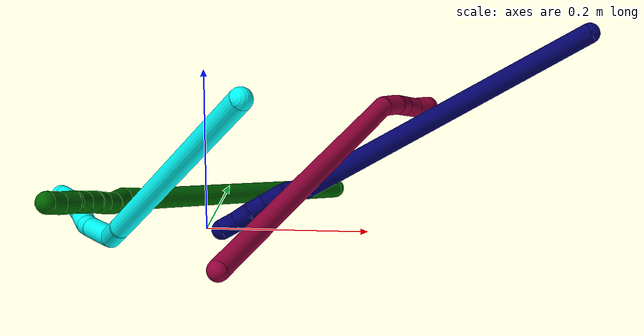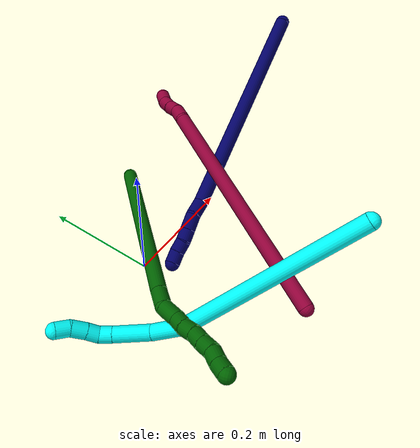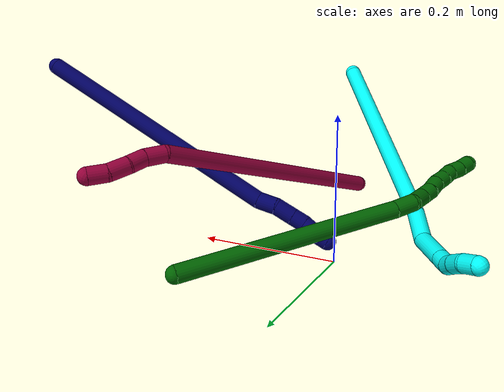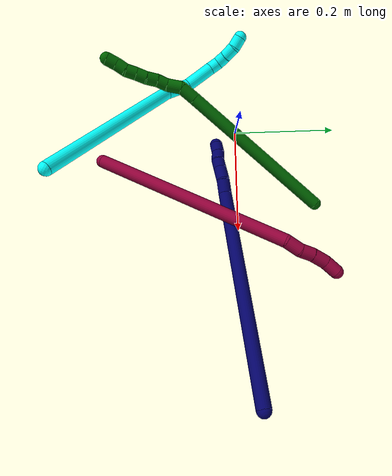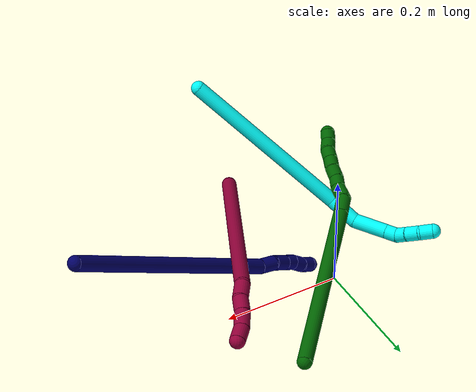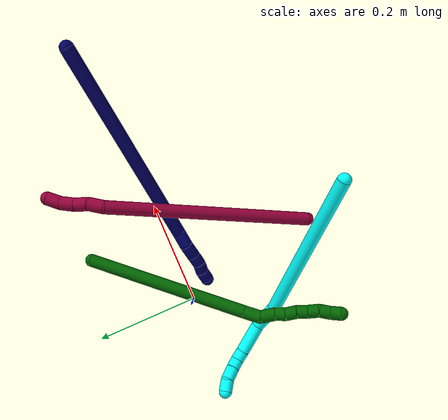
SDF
<sdf version="1.7">
 <world name="default">
  <model name="3">
   <static>0</static>
   <link name="3">
    <collision name="collision-cylinder-e_1_1_4">
     <pose>-0.101077 0.094015 -0.061134 -2.14735 -0.733545 1.23219</pose>
     <geometry><cylinder><radius>0.0125</radius><length>0.301945</length></cylinder></geometry>
     <surface>
      <friction><ode><mu>1.16</mu><mu2>1.16</mu2><slip1>0</slip1><slip2>0</slip2></ode></friction>
      <contact><ode><kp>1e+06</kp><kd>1</kd><max_vel>0</max_vel><min_depth>0.001</min_depth></ode></contact>
     </surface>
    </collision>
    <visual name="visual-cylinder-e_1_1_4">
     <pose>-0.101077 0.094015 -0.061134 -2.14735 -0.733545 1.23219</pose>
     <geometry><cylinder><radius>0.0125</radius><length>0.301945</length></cylinder></geometry>
     <material><ambient>0.003922 1 0.996078 1</ambient></material>
    </visual>
    <collision name="collision-cylinder-e_2_4_5">
     <pose>-0.214316 0.205091 -0.13794 -2.31381 -0.483421 1.02285</pose>
     <geometry><cylinder><radius>0.0125</radius><length>0.052331</length></cylinder></geometry>
     <surface>
      <friction><ode><mu>1.16</mu><mu2>1.16</mu2><slip1>0</slip1><slip2>0</slip2></ode></friction>
      <contact><ode><kp>1e+06</kp><kd>1</kd><max_vel>0</max_vel><min_depth>0.001</min_depth></ode></contact>
     </surface>
    </collision>
    <visual name="visual-cylinder-e_2_4_5">
     <pose>-0.214316 0.205091 -0.13794 -2.31381 -0.483421 1.02285</pose>
     <geometry><cylinder><radius>0.0125</radius><length>0.052331</length></cylinder></geometry>
     <material><ambient>0.003922 1 0.996078 1</ambient></material>
    </visual>
    <collision name="collision-cylinder-e_3_5_6">
     <pose>-0.230747 0.248249 -0.16565 -2.00297 -0.147452 0.229796</pose>
     <geometry><cylinder><radius>0.0125</radius><length>0.05811</length></cylinder></geometry>
     <surface>
      <friction><ode><mu>1.16</mu><mu2>1.16</mu2><slip1>0</slip1><slip2>0</slip2></ode></friction>
      <contact><ode><kp>1e+06</kp><kd>1</kd><max_vel>0</max_vel><min_depth>0.001</min_depth></ode></contact>
     </surface>
    </collision>
    <visual name="visual-cylinder-e_3_5_6">
     <pose>-0.230747 0.248249 -0.16565 -2.00297 -0.147452 0.229796</pose>
     <geometry><cylinder><radius>0.0125</radius><length>0.05811</length></cylinder></geometry>
     <material><ambient>0.003922 1 0.996078 1</ambient></material>
    </visual>
    <collision name="collision-cylinder-e_4_6_7">
     <pose>-0.236142 0.283549 -0.182163 -2.0234 -0.109635 0.174951</pose>
     <geometry><cylinder><radius>0.0125</radius><length>0.020591</length></cylinder></geometry>
     <surface>
      <friction><ode><mu>1.16</mu><mu2>1.16</mu2><slip1>0</slip1><slip2>0</slip2></ode></friction>
      <contact><ode><kp>1e+06</kp><kd>1</kd><max_vel>0</max_vel><min_depth>0.001</min_depth></ode></contact>
     </surface>
    </collision>
    <visual name="visual-cylinder-e_4_6_7">
     <pose>-0.236142 0.283549 -0.182163 -2.0234 -0.109635 0.174951</pose>
     <geometry><cylinder><radius>0.0125</radius><length>0.020591</length></cylinder></geometry>
     <material><ambient>0.003922 1 0.996078 1</ambient></material>
    </visual>
    <collision name="collision-cylinder-e_5_7_8">
     <pose>-0.233642 0.301791 -0.18913 -1.83979 0.369091 -0.48071</pose>
     <geometry><cylinder><radius>0.0125</radius><length>0.020106</length></cylinder></geometry>
     <surface>
      <friction><ode><mu>1.16</mu><mu2>1.16</mu2><slip1>0</slip1><slip2>0</slip2></ode></friction>
      <contact><ode><kp>1e+06</kp><kd>1</kd><max_vel>0</max_vel><min_depth>0.001</min_depth></ode></contact>
     </surface>
    </collision>
    <visual name="visual-cylinder-e_5_7_8">
     <pose>-0.233642 0.301791 -0.18913 -1.83979 0.369091 -0.48071</pose>
     <geometry><cylinder><radius>0.0125</radius><length>0.020106</length></cylinder></geometry>
     <material><ambient>0.003922 1 0.996078 1</ambient></material>
    </visual>
    <collision name="collision-cylinder-e_6_8_9">
     <pose>-0.226397 0.322197 -0.194106 -1.78595 0.301431 -0.372898</pose>
     <geometry><cylinder><radius>0.0125</radius><length>0.024369</length></cylinder></geometry>
     <surface>
      <friction><ode><mu>1.16</mu><mu2>1.16</mu2><slip1>0</slip1><slip2>0</slip2></ode></friction>
      <contact><ode><kp>1e+06</kp><kd>1</kd><max_vel>0</max_vel><min_depth>0.001</min_depth></ode></contact>
     </surface>
    </collision>
    <visual name="visual-cylinder-e_6_8_9">
     <pose>-0.226397 0.322197 -0.194106 -1.78595 0.301431 -0.372898</pose>
     <geometry><cylinder><radius>0.0125</radius><length>0.024369</length></cylinder></geometry>
     <material><ambient>0.003922 1 0.996078 1</ambient></material>
    </visual>
    <collision name="collision-cylinder-e_7_9_2">
     <pose>-0.222437 0.344832 -0.196719 -1.58229 0.030392 -0.030743</pose>
     <geometry><cylinder><radius>0.0125</radius><length>0.022548</length></cylinder></geometry>
     <surface>
      <friction><ode><mu>1.16</mu><mu2>1.16</mu2><slip1>0</slip1><slip2>0</slip2></ode></friction>
      <contact><ode><kp>1e+06</kp><kd>1</kd><max_vel>0</max_vel><min_depth>0.001</min_depth></ode></contact>
     </surface>
    </collision>
    <visual name="visual-cylinder-e_7_9_2">
     <pose>-0.222437 0.344832 -0.196719 -1.58229 0.030392 -0.030743</pose>
     <geometry><cylinder><radius>0.0125</radius><length>0.022548</length></cylinder></geometry>
     <material><ambient>0.003922 1 0.996078 1</ambient></material>
    </visual>
    <collision name="collision-sphere-2">
     <pose>-0.222095 0.356101 -0.196849 0 -0 0</pose>
     <geometry><sphere><radius>0.0125</radius></sphere></geometry>
     <surface>
      <friction><ode><mu>1.16</mu><mu2>1.16</mu2><slip1>0</slip1><slip2>0</slip2></ode></friction>
      <contact><ode><kp>1e+06</kp><kd>1</kd><max_vel>0</max_vel><min_depth>0.001</min_depth></ode></contact>
     </surface>
    </collision>
    <visual name="visual-sphere-2">
     <pose>-0.222095 0.356101 -0.196849 0 -0 0</pose>
     <geometry><sphere><radius>0.0125</radius></sphere></geometry>
     <material><ambient>0.003922 1 0.996078 1</ambient></material>
    </visual>
    <collision name="collision-sphere-9">
     <pose>-0.22278 0.333564 -0.19659 0 -0 0</pose>
     <geometry><sphere><radius>0.0125</radius></sphere></geometry>
     <surface>
      <friction><ode><mu>1.16</mu><mu2>1.16</mu2><slip1>0</slip1><slip2>0</slip2></ode></friction>
      <contact><ode><kp>1e+06</kp><kd>1</kd><max_vel>0</max_vel><min_depth>0.001</min_depth></ode></contact>
     </surface>
    </collision>
    <visual name="visual-sphere-9">
     <pose>-0.22278 0.333564 -0.19659 0 -0 0</pose>
     <geometry><sphere><radius>0.0125</radius></sphere></geometry>
     <material><ambient>0.003922 1 0.996078 1</ambient></material>
    </visual>
    <collision name="collision-sphere-4">
     <pose>-0.202154 0.18803 -0.122267 0 -0 0</pose>
     <geometry><sphere><radius>0.0125</radius></sphere></geometry>
     <surface>
      <friction><ode><mu>1.16</mu><mu2>1.16</mu2><slip1>0</slip1><slip2>0</slip2></ode></friction>
      <contact><ode><kp>1e+06</kp><kd>1</kd><max_vel>0</max_vel><min_depth>0.001</min_depth></ode></contact>
     </surface>
    </collision>
    <visual name="visual-sphere-4">
     <pose>-0.202154 0.18803 -0.122267 0 -0 0</pose>
     <geometry><sphere><radius>0.0125</radius></sphere></geometry>
     <material><ambient>0.003922 1 0.996078 1</ambient></material>
    </visual>
    <collision name="collision-sphere-1">
     <geometry><sphere><radius>0.0125</radius></sphere></geometry>
     <surface>
      <friction><ode><mu>1.16</mu><mu2>1.16</mu2><slip1>0</slip1><slip2>0</slip2></ode></friction>
      <contact><ode><kp>1e+06</kp><kd>1</kd><max_vel>0</max_vel><min_depth>0.001</min_depth></ode></contact>
     </surface>
    </collision>
    <visual name="visual-sphere-1">
     <geometry><sphere><radius>0.0125</radius></sphere></geometry>
     <material><ambient>0.003922 1 0.996078 1</ambient></material>
    </visual>
    <collision name="collision-sphere-8">
     <pose>-0.230015 0.31083 -0.191622 0 -0 0</pose>
     <geometry><sphere><radius>0.0125</radius></sphere></geometry>
     <surface>
      <friction><ode><mu>1.16</mu><mu2>1.16</mu2><slip1>0</slip1><slip2>0</slip2></ode></friction>
      <contact><ode><kp>1e+06</kp><kd>1</kd><max_vel>0</max_vel><min_depth>0.001</min_depth></ode></contact>
     </surface>
    </collision>
    <visual name="visual-sphere-8">
     <pose>-0.230015 0.31083 -0.191622 0 -0 0</pose>
     <geometry><sphere><radius>0.0125</radius></sphere></geometry>
     <material><ambient>0.003922 1 0.996078 1</ambient></material>
    </visual>
    <collision name="collision-sphere-5">
     <pose>-0.226478 0.222152 -0.153613 0 -0 0</pose>
     <geometry><sphere><radius>0.0125</radius></sphere></geometry>
     <surface>
      <friction><ode><mu>1.16</mu><mu2>1.16</mu2><slip1>0</slip1><slip2>0</slip2></ode></friction>
      <contact><ode><kp>1e+06</kp><kd>1</kd><max_vel>0</max_vel><min_depth>0.001</min_depth></ode></contact>
     </surface>
    </collision>
    <visual name="visual-sphere-5">
     <pose>-0.226478 0.222152 -0.153613 0 -0 0</pose>
     <geometry><sphere><radius>0.0125</radius></sphere></geometry>
     <material><ambient>0.003922 1 0.996078 1</ambient></material>
    </visual>
    <collision name="collision-sphere-6">
     <pose>-0.235016 0.274346 -0.177687 0 -0 0</pose>
     <geometry><sphere><radius>0.0125</radius></sphere></geometry>
     <surface>
      <friction><ode><mu>1.16</mu><mu2>1.16</mu2><slip1>0</slip1><slip2>0</slip2></ode></friction>
      <contact><ode><kp>1e+06</kp><kd>1</kd><max_vel>0</max_vel><min_depth>0.001</min_depth></ode></contact>
     </surface>
    </collision>
    <visual name="visual-sphere-6">
     <pose>-0.235016 0.274346 -0.177687 0 -0 0</pose>
     <geometry><sphere><radius>0.0125</radius></sphere></geometry>
     <material><ambient>0.003922 1 0.996078 1</ambient></material>
    </visual>
    <collision name="collision-sphere-7">
     <pose>-0.237269 0.292753 -0.186638 0 -0 0</pose>
     <geometry><sphere><radius>0.0125</radius></sphere></geometry>
     <surface>
      <friction><ode><mu>1.16</mu><mu2>1.16</mu2><slip1>0</slip1><slip2>0</slip2></ode></friction>
      <contact><ode><kp>1e+06</kp><kd>1</kd><max_vel>0</max_vel><min_depth>0.001</min_depth></ode></contact>
     </surface>
    </collision>
    <visual name="visual-sphere-7">
     <pose>-0.237269 0.292753 -0.186638 0 -0 0</pose>
     <geometry><sphere><radius>0.0125</radius></sphere></geometry>
     <material><ambient>0.003922 1 0.996078 1</ambient></material>
    </visual>
    <inertial>
     <pose>-0.150473 0.162158 -0.104046 0 -0 0</pose>
     <mass>0.5</mass>
     <inertia>
      <ixx>0.002212</ixx>
      <ixy>0</ixy>
      <ixz>0</ixz>
      <iyy>0.002451</iyy>
      <iyz>0</iyz>
      <izz>6.8e-05</izz>
     </inertia>
    </inertial>
   </link>
   <pose>0.086142 -0.309185 0.226495 0.620953 -1.20568 0.402928</pose>
  </model>
  <model name="6">
   <static>0</static>
   <link name="6">
    <collision name="collision-cylinder-e_1_1_4">
     <pose>-0.125184 -0.044501 -0.086803 2.66786 -0.908861 -2.22372</pose>
     <geometry><cylinder><radius>0.0125</radius><length>0.317403</length></cylinder></geometry>
     <surface>
      <friction><ode><mu>1.16</mu><mu2>1.16</mu2><slip1>0</slip1><slip2>0</slip2></ode></friction>
      <contact><ode><kp>1e+06</kp><kd>1</kd><max_vel>0</max_vel><min_depth>0.001</min_depth></ode></contact>
     </surface>
    </collision>
    <visual name="visual-cylinder-e_1_1_4">
     <pose>-0.125184 -0.044501 -0.086803 2.66786 -0.908861 -2.22372</pose>
     <geometry><cylinder><radius>0.0125</radius><length>0.317403</length></cylinder></geometry>
     <material><ambient>0 0.392157 0.003922 1</ambient></material>
    </visual>
    <collision name="collision-cylinder-e_2_4_5">
     <pose>-0.262596 -0.094484 -0.182718 2.59997 -0.854918 -2.04692</pose>
     <geometry><cylinder><radius>0.0125</radius><length>0.03241</length></cylinder></geometry>
     <surface>
      <friction><ode><mu>1.16</mu><mu2>1.16</mu2><slip1>0</slip1><slip2>0</slip2></ode></friction>
      <contact><ode><kp>1e+06</kp><kd>1</kd><max_vel>0</max_vel><min_depth>0.001</min_depth></ode></contact>
     </surface>
    </collision>
    <visual name="visual-cylinder-e_2_4_5">
     <pose>-0.262596 -0.094484 -0.182718 2.59997 -0.854918 -2.04692</pose>
     <geometry><cylinder><radius>0.0125</radius><length>0.03241</length></cylinder></geometry>
     <material><ambient>0 0.392157 0.003922 1</ambient></material>
    </visual>
    <collision name="collision-cylinder-e_3_5_6">
     <pose>-0.280973 -0.10164 -0.20456 3.0109 -0.446742 -2.58062</pose>
     <geometry><cylinder><radius>0.0125</radius><length>0.028471</length></cylinder></geometry>
     <surface>
      <friction><ode><mu>1.16</mu><mu2>1.16</mu2><slip1>0</slip1><slip2>0</slip2></ode></friction>
      <contact><ode><kp>1e+06</kp><kd>1</kd><max_vel>0</max_vel><min_depth>0.001</min_depth></ode></contact>
     </surface>
    </collision>
    <visual name="visual-cylinder-e_3_5_6">
     <pose>-0.280973 -0.10164 -0.20456 3.0109 -0.446742 -2.58062</pose>
     <geometry><cylinder><radius>0.0125</radius><length>0.028471</length></cylinder></geometry>
     <material><ambient>0 0.392157 0.003922 1</ambient></material>
    </visual>
    <collision name="collision-cylinder-e_4_6_7">
     <pose>-0.292626 -0.106839 -0.225032 2.71434 -0.574122 -1.87413</pose>
     <geometry><cylinder><radius>0.0125</radius><length>0.020267</length></cylinder></geometry>
     <surface>
      <friction><ode><mu>1.16</mu><mu2>1.16</mu2><slip1>0</slip1><slip2>0</slip2></ode></friction>
      <contact><ode><kp>1e+06</kp><kd>1</kd><max_vel>0</max_vel><min_depth>0.001</min_depth></ode></contact>
     </surface>
    </collision>
    <visual name="visual-cylinder-e_4_6_7">
     <pose>-0.292626 -0.106839 -0.225032 2.71434 -0.574122 -1.87413</pose>
     <geometry><cylinder><radius>0.0125</radius><length>0.020267</length></cylinder></geometry>
     <material><ambient>0 0.392157 0.003922 1</ambient></material>
    </visual>
    <collision name="collision-cylinder-e_5_7_8">
     <pose>-0.301789 -0.114128 -0.242064 2.75656 -0.350086 -1.47362</pose>
     <geometry><cylinder><radius>0.0125</radius><length>0.021337</length></cylinder></geometry>
     <surface>
      <friction><ode><mu>1.16</mu><mu2>1.16</mu2><slip1>0</slip1><slip2>0</slip2></ode></friction>
      <contact><ode><kp>1e+06</kp><kd>1</kd><max_vel>0</max_vel><min_depth>0.001</min_depth></ode></contact>
     </surface>
    </collision>
    <visual name="visual-cylinder-e_5_7_8">
     <pose>-0.301789 -0.114128 -0.242064 2.75656 -0.350086 -1.47362</pose>
     <geometry><cylinder><radius>0.0125</radius><length>0.021337</length></cylinder></geometry>
     <material><ambient>0 0.392157 0.003922 1</ambient></material>
    </visual>
    <collision name="collision-cylinder-e_6_8_9">
     <pose>-0.310811 -0.120874 -0.259259 2.78099 -0.56554 -2.02101</pose>
     <geometry><cylinder><radius>0.0125</radius><length>0.020018</length></cylinder></geometry>
     <surface>
      <friction><ode><mu>1.16</mu><mu2>1.16</mu2><slip1>0</slip1><slip2>0</slip2></ode></friction>
      <contact><ode><kp>1e+06</kp><kd>1</kd><max_vel>0</max_vel><min_depth>0.001</min_depth></ode></contact>
     </surface>
    </collision>
    <visual name="visual-cylinder-e_6_8_9">
     <pose>-0.310811 -0.120874 -0.259259 2.78099 -0.56554 -2.02101</pose>
     <geometry><cylinder><radius>0.0125</radius><length>0.020018</length></cylinder></geometry>
     <material><ambient>0 0.392157 0.003922 1</ambient></material>
    </visual>
    <collision name="collision-cylinder-e_7_9_10">
     <pose>-0.320709 -0.127174 -0.275444 2.76032 -0.470371 -1.7856</pose>
     <geometry><cylinder><radius>0.0125</radius><length>0.02001</length></cylinder></geometry>
     <surface>
      <friction><ode><mu>1.16</mu><mu2>1.16</mu2><slip1>0</slip1><slip2>0</slip2></ode></friction>
      <contact><ode><kp>1e+06</kp><kd>1</kd><max_vel>0</max_vel><min_depth>0.001</min_depth></ode></contact>
     </surface>
    </collision>
    <visual name="visual-cylinder-e_7_9_10">
     <pose>-0.320709 -0.127174 -0.275444 2.76032 -0.470371 -1.7856</pose>
     <geometry><cylinder><radius>0.0125</radius><length>0.02001</length></cylinder></geometry>
     <material><ambient>0 0.392157 0.003922 1</ambient></material>
    </visual>
    <collision name="collision-cylinder-e_8_10_11">
     <pose>-0.332345 -0.13326 -0.290254 2.74091 -0.785933 -2.23057</pose>
     <geometry><cylinder><radius>0.0125</radius><length>0.020074</length></cylinder></geometry>
     <surface>
      <friction><ode><mu>1.16</mu><mu2>1.16</mu2><slip1>0</slip1><slip2>0</slip2></ode></friction>
      <contact><ode><kp>1e+06</kp><kd>1</kd><max_vel>0</max_vel><min_depth>0.001</min_depth></ode></contact>
     </surface>
    </collision>
    <visual name="visual-cylinder-e_8_10_11">
     <pose>-0.332345 -0.13326 -0.290254 2.74091 -0.785933 -2.23057</pose>
     <geometry><cylinder><radius>0.0125</radius><length>0.020074</length></cylinder></geometry>
     <material><ambient>0 0.392157 0.003922 1</ambient></material>
    </visual>
    <collision name="collision-cylinder-e_9_11_2">
     <pose>-0.345426 -0.139554 -0.303989 2.68618 -0.640672 -1.92221</pose>
     <geometry><cylinder><radius>0.0125</radius><length>0.020011</length></cylinder></geometry>
     <surface>
      <friction><ode><mu>1.16</mu><mu2>1.16</mu2><slip1>0</slip1><slip2>0</slip2></ode></friction>
      <contact><ode><kp>1e+06</kp><kd>1</kd><max_vel>0</max_vel><min_depth>0.001</min_depth></ode></contact>
     </surface>
    </collision>
    <visual name="visual-cylinder-e_9_11_2">
     <pose>-0.345426 -0.139554 -0.303989 2.68618 -0.640672 -1.92221</pose>
     <geometry><cylinder><radius>0.0125</radius><length>0.020011</length></cylinder></geometry>
     <material><ambient>0 0.392157 0.003922 1</ambient></material>
    </visual>
    <collision name="collision-sphere-2">
     <pose>-0.351407 -0.143082 -0.311193 0 -0 0</pose>
     <geometry><sphere><radius>0.0125</radius></sphere></geometry>
     <surface>
      <friction><ode><mu>1.16</mu><mu2>1.16</mu2><slip1>0</slip1><slip2>0</slip2></ode></friction>
      <contact><ode><kp>1e+06</kp><kd>1</kd><max_vel>0</max_vel><min_depth>0.001</min_depth></ode></contact>
     </surface>
    </collision>
    <visual name="visual-sphere-2">
     <pose>-0.351407 -0.143082 -0.311193 0 -0 0</pose>
     <geometry><sphere><radius>0.0125</radius></sphere></geometry>
     <material><ambient>0 0.392157 0.003922 1</ambient></material>
    </visual>
    <collision name="collision-sphere-11">
     <pose>-0.339446 -0.136026 -0.296785 0 -0 0</pose>
     <geometry><sphere><radius>0.0125</radius></sphere></geometry>
     <surface>
      <friction><ode><mu>1.16</mu><mu2>1.16</mu2><slip1>0</slip1><slip2>0</slip2></ode></friction>
      <contact><ode><kp>1e+06</kp><kd>1</kd><max_vel>0</max_vel><min_depth>0.001</min_depth></ode></contact>
     </surface>
    </collision>
    <visual name="visual-sphere-11">
     <pose>-0.339446 -0.136026 -0.296785 0 -0 0</pose>
     <geometry><sphere><radius>0.0125</radius></sphere></geometry>
     <material><ambient>0 0.392157 0.003922 1</ambient></material>
    </visual>
    <collision name="collision-sphere-10">
     <pose>-0.325244 -0.130493 -0.283722 0 -0 0</pose>
     <geometry><sphere><radius>0.0125</radius></sphere></geometry>
     <surface>
      <friction><ode><mu>1.16</mu><mu2>1.16</mu2><slip1>0</slip1><slip2>0</slip2></ode></friction>
      <contact><ode><kp>1e+06</kp><kd>1</kd><max_vel>0</max_vel><min_depth>0.001</min_depth></ode></contact>
     </surface>
    </collision>
    <visual name="visual-sphere-10">
     <pose>-0.325244 -0.130493 -0.283722 0 -0 0</pose>
     <geometry><sphere><radius>0.0125</radius></sphere></geometry>
     <material><ambient>0 0.392157 0.003922 1</ambient></material>
    </visual>
    <collision name="collision-sphere-9">
     <pose>-0.316175 -0.123856 -0.267166 0 -0 0</pose>
     <geometry><sphere><radius>0.0125</radius></sphere></geometry>
     <surface>
      <friction><ode><mu>1.16</mu><mu2>1.16</mu2><slip1>0</slip1><slip2>0</slip2></ode></friction>
      <contact><ode><kp>1e+06</kp><kd>1</kd><max_vel>0</max_vel><min_depth>0.001</min_depth></ode></contact>
     </surface>
    </collision>
    <visual name="visual-sphere-9">
     <pose>-0.316175 -0.123856 -0.267166 0 -0 0</pose>
     <geometry><sphere><radius>0.0125</radius></sphere></geometry>
     <material><ambient>0 0.392157 0.003922 1</ambient></material>
    </visual>
    <collision name="collision-sphere-4">
     <pose>-0.250369 -0.089001 -0.173605 0 -0 0</pose>
     <geometry><sphere><radius>0.0125</radius></sphere></geometry>
     <surface>
      <friction><ode><mu>1.16</mu><mu2>1.16</mu2><slip1>0</slip1><slip2>0</slip2></ode></friction>
      <contact><ode><kp>1e+06</kp><kd>1</kd><max_vel>0</max_vel><min_depth>0.001</min_depth></ode></contact>
     </surface>
    </collision>
    <visual name="visual-sphere-4">
     <pose>-0.250369 -0.089001 -0.173605 0 -0 0</pose>
     <geometry><sphere><radius>0.0125</radius></sphere></geometry>
     <material><ambient>0 0.392157 0.003922 1</ambient></material>
    </visual>
    <collision name="collision-sphere-1">
     <geometry><sphere><radius>0.0125</radius></sphere></geometry>
     <surface>
      <friction><ode><mu>1.16</mu><mu2>1.16</mu2><slip1>0</slip1><slip2>0</slip2></ode></friction>
      <contact><ode><kp>1e+06</kp><kd>1</kd><max_vel>0</max_vel><min_depth>0.001</min_depth></ode></contact>
     </surface>
    </collision>
    <visual name="visual-sphere-1">
     <geometry><sphere><radius>0.0125</radius></sphere></geometry>
     <material><ambient>0 0.392157 0.003922 1</ambient></material>
    </visual>
    <collision name="collision-sphere-8">
     <pose>-0.305448 -0.117892 -0.251352 0 -0 0</pose>
     <geometry><sphere><radius>0.0125</radius></sphere></geometry>
     <surface>
      <friction><ode><mu>1.16</mu><mu2>1.16</mu2><slip1>0</slip1><slip2>0</slip2></ode></friction>
      <contact><ode><kp>1e+06</kp><kd>1</kd><max_vel>0</max_vel><min_depth>0.001</min_depth></ode></contact>
     </surface>
    </collision>
    <visual name="visual-sphere-8">
     <pose>-0.305448 -0.117892 -0.251352 0 -0 0</pose>
     <geometry><sphere><radius>0.0125</radius></sphere></geometry>
     <material><ambient>0 0.392157 0.003922 1</ambient></material>
    </visual>
    <collision name="collision-sphere-5">
     <pose>-0.274823 -0.099967 -0.191831 0 -0 0</pose>
     <geometry><sphere><radius>0.0125</radius></sphere></geometry>
     <surface>
      <friction><ode><mu>1.16</mu><mu2>1.16</mu2><slip1>0</slip1><slip2>0</slip2></ode></friction>
      <contact><ode><kp>1e+06</kp><kd>1</kd><max_vel>0</max_vel><min_depth>0.001</min_depth></ode></contact>
     </surface>
    </collision>
    <visual name="visual-sphere-5">
     <pose>-0.274823 -0.099967 -0.191831 0 -0 0</pose>
     <geometry><sphere><radius>0.0125</radius></sphere></geometry>
     <material><ambient>0 0.392157 0.003922 1</ambient></material>
    </visual>
    <collision name="collision-sphere-6">
     <pose>-0.287123 -0.103313 -0.217289 0 -0 0</pose>
     <geometry><sphere><radius>0.0125</radius></sphere></geometry>
     <surface>
      <friction><ode><mu>1.16</mu><mu2>1.16</mu2><slip1>0</slip1><slip2>0</slip2></ode></friction>
      <contact><ode><kp>1e+06</kp><kd>1</kd><max_vel>0</max_vel><min_depth>0.001</min_depth></ode></contact>
     </surface>
    </collision>
    <visual name="visual-sphere-6">
     <pose>-0.287123 -0.103313 -0.217289 0 -0 0</pose>
     <geometry><sphere><radius>0.0125</radius></sphere></geometry>
     <material><ambient>0 0.392157 0.003922 1</ambient></material>
    </visual>
    <collision name="collision-sphere-7">
     <pose>-0.29813 -0.110364 -0.232776 0 -0 0</pose>
     <geometry><sphere><radius>0.0125</radius></sphere></geometry>
     <surface>
      <friction><ode><mu>1.16</mu><mu2>1.16</mu2><slip1>0</slip1><slip2>0</slip2></ode></friction>
      <contact><ode><kp>1e+06</kp><kd>1</kd><max_vel>0</max_vel><min_depth>0.001</min_depth></ode></contact>
     </surface>
    </collision>
    <visual name="visual-sphere-7">
     <pose>-0.29813 -0.110364 -0.232776 0 -0 0</pose>
     <geometry><sphere><radius>0.0125</radius></sphere></geometry>
     <material><ambient>0 0.392157 0.003922 1</ambient></material>
    </visual>
    <inertial>
     <pose>-0.189674 -0.070226 -0.143268 0 -0 0</pose>
     <mass>0.5</mass>
     <inertia>
      <ixx>-0.002351</ixx>
      <ixy>0</ixy>
      <ixz>0</ixz>
      <iyy>0.000893</iyy>
      <iyz>0</iyz>
      <izz>0.002852</izz>
     </inertia>
    </inertial>
   </link>
   <pose>0.150171 0.155175 0.012482 -1.6089 -0.186882 0.269155</pose>
  </model>
  <model name="7">
   <static>0</static>
   <link name="7">
    <collision name="collision-cylinder-e_1_1_4">
     <pose>-0.111701 0.02298 -0.154029 -2.99349 -0.622215 2.68811</pose>
     <geometry><cylinder><radius>0.0125</radius><length>0.383303</length></cylinder></geometry>
     <surface>
      <friction><ode><mu>1.16</mu><mu2>1.16</mu2><slip1>0</slip1><slip2>0</slip2></ode></friction>
      <contact><ode><kp>1e+06</kp><kd>1</kd><max_vel>0</max_vel><min_depth>0.001</min_depth></ode></contact>
     </surface>
    </collision>
    <visual name="visual-cylinder-e_1_1_4">
     <pose>-0.111701 0.02298 -0.154029 -2.99349 -0.622215 2.68811</pose>
     <geometry><cylinder><radius>0.0125</radius><length>0.383303</length></cylinder></geometry>
     <material><ambient>0.003922 0 0.403922 1</ambient></material>
    </visual>
    <collision name="collision-cylinder-e_2_4_5">
     <pose>-0.234369 0.047606 -0.316657 -2.95238 -0.897078 2.75224</pose>
     <geometry><cylinder><radius>0.0125</radius><length>0.028065</length></cylinder></geometry>
     <surface>
      <friction><ode><mu>1.16</mu><mu2>1.16</mu2><slip1>0</slip1><slip2>0</slip2></ode></friction>
      <contact><ode><kp>1e+06</kp><kd>1</kd><max_vel>0</max_vel><min_depth>0.001</min_depth></ode></contact>
     </surface>
    </collision>
    <visual name="visual-cylinder-e_2_4_5">
     <pose>-0.234369 0.047606 -0.316657 -2.95238 -0.897078 2.75224</pose>
     <geometry><cylinder><radius>0.0125</radius><length>0.028065</length></cylinder></geometry>
     <material><ambient>0.003922 0 0.403922 1</ambient></material>
    </visual>
    <collision name="collision-cylinder-e_3_5_6">
     <pose>-0.253336 0.050004 -0.336387 -3.07422 -0.622092 2.93272</pose>
     <geometry><cylinder><radius>0.0125</radius><length>0.027458</length></cylinder></geometry>
     <surface>
      <friction><ode><mu>1.16</mu><mu2>1.16</mu2><slip1>0</slip1><slip2>0</slip2></ode></friction>
      <contact><ode><kp>1e+06</kp><kd>1</kd><max_vel>0</max_vel><min_depth>0.001</min_depth></ode></contact>
     </surface>
    </collision>
    <visual name="visual-cylinder-e_3_5_6">
     <pose>-0.253336 0.050004 -0.336387 -3.07422 -0.622092 2.93272</pose>
     <geometry><cylinder><radius>0.0125</radius><length>0.027458</length></cylinder></geometry>
     <material><ambient>0.003922 0 0.403922 1</ambient></material>
    </visual>
    <collision name="collision-cylinder-e_4_6_7">
     <pose>-0.267256 0.051328 -0.355607 -3.07083 -0.630555 2.92537</pose>
     <geometry><cylinder><radius>0.0125</radius><length>0.020077</length></cylinder></geometry>
     <surface>
      <friction><ode><mu>1.16</mu><mu2>1.16</mu2><slip1>0</slip1><slip2>0</slip2></ode></friction>
      <contact><ode><kp>1e+06</kp><kd>1</kd><max_vel>0</max_vel><min_depth>0.001</min_depth></ode></contact>
     </surface>
    </collision>
    <visual name="visual-cylinder-e_4_6_7">
     <pose>-0.267256 0.051328 -0.355607 -3.07083 -0.630555 2.92537</pose>
     <geometry><cylinder><radius>0.0125</radius><length>0.020077</length></cylinder></geometry>
     <material><ambient>0.003922 0 0.403922 1</ambient></material>
    </visual>
    <collision name="collision-cylinder-e_5_7_8">
     <pose>-0.27798 0.05464 -0.372207 -2.83034 -0.493093 2.02667</pose>
     <geometry><cylinder><radius>0.0125</radius><length>0.020304</length></cylinder></geometry>
     <surface>
      <friction><ode><mu>1.16</mu><mu2>1.16</mu2><slip1>0</slip1><slip2>0</slip2></ode></friction>
      <contact><ode><kp>1e+06</kp><kd>1</kd><max_vel>0</max_vel><min_depth>0.001</min_depth></ode></contact>
     </surface>
    </collision>
    <visual name="visual-cylinder-e_5_7_8">
     <pose>-0.27798 0.05464 -0.372207 -2.83034 -0.493093 2.02667</pose>
     <geometry><cylinder><radius>0.0125</radius><length>0.020304</length></cylinder></geometry>
     <material><ambient>0.003922 0 0.403922 1</ambient></material>
    </visual>
    <collision name="collision-cylinder-e_6_8_2">
     <pose>-0.288925 0.058205 -0.389069 -3.04292 -0.631766 2.84172</pose>
     <geometry><cylinder><radius>0.0125</radius><length>0.020793</length></cylinder></geometry>
     <surface>
      <friction><ode><mu>1.16</mu><mu2>1.16</mu2><slip1>0</slip1><slip2>0</slip2></ode></friction>
      <contact><ode><kp>1e+06</kp><kd>1</kd><max_vel>0</max_vel><min_depth>0.001</min_depth></ode></contact>
     </surface>
    </collision>
    <visual name="visual-cylinder-e_6_8_2">
     <pose>-0.288925 0.058205 -0.389069 -3.04292 -0.631766 2.84172</pose>
     <geometry><cylinder><radius>0.0125</radius><length>0.020793</length></cylinder></geometry>
     <material><ambient>0.003922 0 0.403922 1</ambient></material>
    </visual>
    <collision name="collision-sphere-2">
     <pose>-0.295065 0.059032 -0.397418 0 -0 0</pose>
     <geometry><sphere><radius>0.0125</radius></sphere></geometry>
     <surface>
      <friction><ode><mu>1.16</mu><mu2>1.16</mu2><slip1>0</slip1><slip2>0</slip2></ode></friction>
      <contact><ode><kp>1e+06</kp><kd>1</kd><max_vel>0</max_vel><min_depth>0.001</min_depth></ode></contact>
     </surface>
    </collision>
    <visual name="visual-sphere-2">
     <pose>-0.295065 0.059032 -0.397418 0 -0 0</pose>
     <geometry><sphere><radius>0.0125</radius></sphere></geometry>
     <material><ambient>0.003922 0 0.403922 1</ambient></material>
    </visual>
    <collision name="collision-sphere-4">
     <pose>-0.223403 0.045959 -0.308058 0 -0 0</pose>
     <geometry><sphere><radius>0.0125</radius></sphere></geometry>
     <surface>
      <friction><ode><mu>1.16</mu><mu2>1.16</mu2><slip1>0</slip1><slip2>0</slip2></ode></friction>
      <contact><ode><kp>1e+06</kp><kd>1</kd><max_vel>0</max_vel><min_depth>0.001</min_depth></ode></contact>
     </surface>
    </collision>
    <visual name="visual-sphere-4">
     <pose>-0.223403 0.045959 -0.308058 0 -0 0</pose>
     <geometry><sphere><radius>0.0125</radius></sphere></geometry>
     <material><ambient>0.003922 0 0.403922 1</ambient></material>
    </visual>
    <collision name="collision-sphere-1">
     <geometry><sphere><radius>0.0125</radius></sphere></geometry>
     <surface>
      <friction><ode><mu>1.16</mu><mu2>1.16</mu2><slip1>0</slip1><slip2>0</slip2></ode></friction>
      <contact><ode><kp>1e+06</kp><kd>1</kd><max_vel>0</max_vel><min_depth>0.001</min_depth></ode></contact>
     </surface>
    </collision>
    <visual name="visual-sphere-1">
     <geometry><sphere><radius>0.0125</radius></sphere></geometry>
     <material><ambient>0.003922 0 0.403922 1</ambient></material>
    </visual>
    <collision name="collision-sphere-8">
     <pose>-0.282785 0.057379 -0.38072 0 -0 0</pose>
     <geometry><sphere><radius>0.0125</radius></sphere></geometry>
     <surface>
      <friction><ode><mu>1.16</mu><mu2>1.16</mu2><slip1>0</slip1><slip2>0</slip2></ode></friction>
      <contact><ode><kp>1e+06</kp><kd>1</kd><max_vel>0</max_vel><min_depth>0.001</min_depth></ode></contact>
     </surface>
    </collision>
    <visual name="visual-sphere-8">
     <pose>-0.282785 0.057379 -0.38072 0 -0 0</pose>
     <geometry><sphere><radius>0.0125</radius></sphere></geometry>
     <material><ambient>0.003922 0 0.403922 1</ambient></material>
    </visual>
    <collision name="collision-sphere-5">
     <pose>-0.245336 0.049253 -0.325255 0 -0 0</pose>
     <geometry><sphere><radius>0.0125</radius></sphere></geometry>
     <surface>
      <friction><ode><mu>1.16</mu><mu2>1.16</mu2><slip1>0</slip1><slip2>0</slip2></ode></friction>
      <contact><ode><kp>1e+06</kp><kd>1</kd><max_vel>0</max_vel><min_depth>0.001</min_depth></ode></contact>
     </surface>
    </collision>
    <visual name="visual-sphere-5">
     <pose>-0.245336 0.049253 -0.325255 0 -0 0</pose>
     <geometry><sphere><radius>0.0125</radius></sphere></geometry>
     <material><ambient>0.003922 0 0.403922 1</ambient></material>
    </visual>
    <collision name="collision-sphere-6">
     <pose>-0.261337 0.050755 -0.347519 0 -0 0</pose>
     <geometry><sphere><radius>0.0125</radius></sphere></geometry>
     <surface>
      <friction><ode><mu>1.16</mu><mu2>1.16</mu2><slip1>0</slip1><slip2>0</slip2></ode></friction>
      <contact><ode><kp>1e+06</kp><kd>1</kd><max_vel>0</max_vel><min_depth>0.001</min_depth></ode></contact>
     </surface>
    </collision>
    <visual name="visual-sphere-6">
     <pose>-0.261337 0.050755 -0.347519 0 -0 0</pose>
     <geometry><sphere><radius>0.0125</radius></sphere></geometry>
     <material><ambient>0.003922 0 0.403922 1</ambient></material>
    </visual>
    <collision name="collision-sphere-7">
     <pose>-0.273174 0.051901 -0.363695 0 -0 0</pose>
     <geometry><sphere><radius>0.0125</radius></sphere></geometry>
     <surface>
      <friction><ode><mu>1.16</mu><mu2>1.16</mu2><slip1>0</slip1><slip2>0</slip2></ode></friction>
      <contact><ode><kp>1e+06</kp><kd>1</kd><max_vel>0</max_vel><min_depth>0.001</min_depth></ode></contact>
     </surface>
    </collision>
    <visual name="visual-sphere-7">
     <pose>-0.273174 0.051901 -0.363695 0 -0 0</pose>
     <geometry><sphere><radius>0.0125</radius></sphere></geometry>
     <material><ambient>0.003922 0 0.403922 1</ambient></material>
    </visual>
    <inertial>
     <pose>-0.146733 0.029735 -0.1999 0 -0 0</pose>
     <mass>0.5</mass>
     <inertia>
      <ixx>-0.00179</ixx>
      <ixy>0</ixy>
      <ixz>0</ixz>
      <iyy>0.006056</iyy>
      <iyz>0</iyz>
      <izz>0.002154</izz>
     </inertia>
    </inertial>
   </link>
   <pose>0.46058 0.017567 0.246735 -0.12638 0.445717 0.149943</pose>
  </model>
  <model name="8">
   <static>0</static>
   <link name="8">
    <collision name="collision-cylinder-e_1_1_4">
     <pose>0.023358 0.17821 0.076845 -1.16368 0.119782 -0.078847</pose>
     <geometry><cylinder><radius>0.0125</radius><length>0.390946</length></cylinder></geometry>
     <surface>
      <friction><ode><mu>1.16</mu><mu2>1.16</mu2><slip1>0</slip1><slip2>0</slip2></ode></friction>
      <contact><ode><kp>1e+06</kp><kd>1</kd><max_vel>0</max_vel><min_depth>0.001</min_depth></ode></contact>
     </surface>
    </collision>
    <visual name="visual-cylinder-e_1_1_4">
     <pose>0.023358 0.17821 0.076845 -1.16368 0.119782 -0.078847</pose>
     <geometry><cylinder><radius>0.0125</radius><length>0.390946</length></cylinder></geometry>
     <material><ambient>0.584314 0 0.227451 1</ambient></material>
    </visual>
    <collision name="collision-cylinder-e_2_4_5">
     <pose>0.053815 0.367695 0.159674 -1.08289 0.507523 -0.309455</pose>
     <geometry><cylinder><radius>0.0125</radius><length>0.02921</length></cylinder></geometry>
     <surface>
      <friction><ode><mu>1.16</mu><mu2>1.16</mu2><slip1>0</slip1><slip2>0</slip2></ode></friction>
      <contact><ode><kp>1e+06</kp><kd>1</kd><max_vel>0</max_vel><min_depth>0.001</min_depth></ode></contact>
     </surface>
    </collision>
    <visual name="visual-cylinder-e_2_4_5">
     <pose>0.053815 0.367695 0.159674 -1.08289 0.507523 -0.309455</pose>
     <geometry><cylinder><radius>0.0125</radius><length>0.02921</length></cylinder></geometry>
     <material><ambient>0.584314 0 0.227451 1</ambient></material>
    </visual>
    <collision name="collision-cylinder-e_3_5_6">
     <pose>0.0678 0.389086 0.167358 -1.40418 0.591265 -0.504266</pose>
     <geometry><cylinder><radius>0.0125</radius><length>0.024711</length></cylinder></geometry>
     <surface>
      <friction><ode><mu>1.16</mu><mu2>1.16</mu2><slip1>0</slip1><slip2>0</slip2></ode></friction>
      <contact><ode><kp>1e+06</kp><kd>1</kd><max_vel>0</max_vel><min_depth>0.001</min_depth></ode></contact>
     </surface>
    </collision>
    <visual name="visual-cylinder-e_3_5_6">
     <pose>0.0678 0.389086 0.167358 -1.40418 0.591265 -0.504266</pose>
     <geometry><cylinder><radius>0.0125</radius><length>0.024711</length></cylinder></geometry>
     <material><ambient>0.584314 0 0.227451 1</ambient></material>
    </visual>
    <collision name="collision-cylinder-e_4_6_7">
     <pose>0.083313 0.409957 0.173084 -1.21273 0.644241 -0.454905</pose>
     <geometry><cylinder><radius>0.0125</radius><length>0.028724</length></cylinder></geometry>
     <surface>
      <friction><ode><mu>1.16</mu><mu2>1.16</mu2><slip1>0</slip1><slip2>0</slip2></ode></friction>
      <contact><ode><kp>1e+06</kp><kd>1</kd><max_vel>0</max_vel><min_depth>0.001</min_depth></ode></contact>
     </surface>
    </collision>
    <visual name="visual-cylinder-e_4_6_7">
     <pose>0.083313 0.409957 0.173084 -1.21273 0.644241 -0.454905</pose>
     <geometry><cylinder><radius>0.0125</radius><length>0.028724</length></cylinder></geometry>
     <material><ambient>0.584314 0 0.227451 1</ambient></material>
    </visual>
    <collision name="collision-cylinder-e_5_7_2">
     <pose>0.098551 0.429922 0.183877 -0.937029 0.524499 -0.270053</pose>
     <geometry><cylinder><radius>0.0125</radius><length>0.026409</length></cylinder></geometry>
     <surface>
      <friction><ode><mu>1.16</mu><mu2>1.16</mu2><slip1>0</slip1><slip2>0</slip2></ode></friction>
      <contact><ode><kp>1e+06</kp><kd>1</kd><max_vel>0</max_vel><min_depth>0.001</min_depth></ode></contact>
     </surface>
    </collision>
    <visual name="visual-cylinder-e_5_7_2">
     <pose>0.098551 0.429922 0.183877 -0.937029 0.524499 -0.270053</pose>
     <geometry><cylinder><radius>0.0125</radius><length>0.026409</length></cylinder></geometry>
     <material><ambient>0.584314 0 0.227451 1</ambient></material>
    </visual>
    <collision name="collision-sphere-2">
     <pose>0.105164 0.439132 0.190645 0 -0 0</pose>
     <geometry><sphere><radius>0.0125</radius></sphere></geometry>
     <surface>
      <friction><ode><mu>1.16</mu><mu2>1.16</mu2><slip1>0</slip1><slip2>0</slip2></ode></friction>
      <contact><ode><kp>1e+06</kp><kd>1</kd><max_vel>0</max_vel><min_depth>0.001</min_depth></ode></contact>
     </surface>
    </collision>
    <visual name="visual-sphere-2">
     <pose>0.105164 0.439132 0.190645 0 -0 0</pose>
     <geometry><sphere><radius>0.0125</radius></sphere></geometry>
     <material><ambient>0.584314 0 0.227451 1</ambient></material>
    </visual>
    <collision name="collision-sphere-7">
     <pose>0.091939 0.420712 0.177109 0 -0 0</pose>
     <geometry><sphere><radius>0.0125</radius></sphere></geometry>
     <surface>
      <friction><ode><mu>1.16</mu><mu2>1.16</mu2><slip1>0</slip1><slip2>0</slip2></ode></friction>
      <contact><ode><kp>1e+06</kp><kd>1</kd><max_vel>0</max_vel><min_depth>0.001</min_depth></ode></contact>
     </surface>
    </collision>
    <visual name="visual-sphere-7">
     <pose>0.091939 0.420712 0.177109 0 -0 0</pose>
     <geometry><sphere><radius>0.0125</radius></sphere></geometry>
     <material><ambient>0.584314 0 0.227451 1</ambient></material>
    </visual>
    <collision name="collision-sphere-6">
     <pose>0.074687 0.399202 0.16906 0 -0 0</pose>
     <geometry><sphere><radius>0.0125</radius></sphere></geometry>
     <surface>
      <friction><ode><mu>1.16</mu><mu2>1.16</mu2><slip1>0</slip1><slip2>0</slip2></ode></friction>
      <contact><ode><kp>1e+06</kp><kd>1</kd><max_vel>0</max_vel><min_depth>0.001</min_depth></ode></contact>
     </surface>
    </collision>
    <visual name="visual-sphere-6">
     <pose>0.074687 0.399202 0.16906 0 -0 0</pose>
     <geometry><sphere><radius>0.0125</radius></sphere></geometry>
     <material><ambient>0.584314 0 0.227451 1</ambient></material>
    </visual>
    <collision name="collision-sphere-5">
     <pose>0.060913 0.37897 0.165657 0 -0 0</pose>
     <geometry><sphere><radius>0.0125</radius></sphere></geometry>
     <surface>
      <friction><ode><mu>1.16</mu><mu2>1.16</mu2><slip1>0</slip1><slip2>0</slip2></ode></friction>
      <contact><ode><kp>1e+06</kp><kd>1</kd><max_vel>0</max_vel><min_depth>0.001</min_depth></ode></contact>
     </surface>
    </collision>
    <visual name="visual-sphere-5">
     <pose>0.060913 0.37897 0.165657 0 -0 0</pose>
     <geometry><sphere><radius>0.0125</radius></sphere></geometry>
     <material><ambient>0.584314 0 0.227451 1</ambient></material>
    </visual>
    <collision name="collision-sphere-1">
     <geometry><sphere><radius>0.0125</radius></sphere></geometry>
     <surface>
      <friction><ode><mu>1.16</mu><mu2>1.16</mu2><slip1>0</slip1><slip2>0</slip2></ode></friction>
      <contact><ode><kp>1e+06</kp><kd>1</kd><max_vel>0</max_vel><min_depth>0.001</min_depth></ode></contact>
     </surface>
    </collision>
    <visual name="visual-sphere-1">
     <geometry><sphere><radius>0.0125</radius></sphere></geometry>
     <material><ambient>0.584314 0 0.227451 1</ambient></material>
    </visual>
    <collision name="collision-sphere-4">
     <pose>0.046716 0.35642 0.15369 0 -0 0</pose>
     <geometry><sphere><radius>0.0125</radius></sphere></geometry>
     <surface>
      <friction><ode><mu>1.16</mu><mu2>1.16</mu2><slip1>0</slip1><slip2>0</slip2></ode></friction>
      <contact><ode><kp>1e+06</kp><kd>1</kd><max_vel>0</max_vel><min_depth>0.001</min_depth></ode></contact>
     </surface>
    </collision>
    <visual name="visual-sphere-4">
     <pose>0.046716 0.35642 0.15369 0 -0 0</pose>
     <geometry><sphere><radius>0.0125</radius></sphere></geometry>
     <material><ambient>0.584314 0 0.227451 1</ambient></material>
    </visual>
    <inertial>
     <pose>0.03475 0.22631 0.097339 0 -0 0</pose>
     <mass>0.5</mass>
     <inertia>
      <ixx>0.004566</ixx>
      <ixy>0</ixy>
      <ixz>0</ixz>
      <iyy>0.001661</iyy>
      <iyz>0</iyz>
      <izz>-0.00515</izz>
     </inertia>
    </inertial>
   </link>
   <pose>0.054476 -0.264408 0.038115 0.550715 1.09221 0.492637</pose>
  </model>
 </world>
</sdf>
